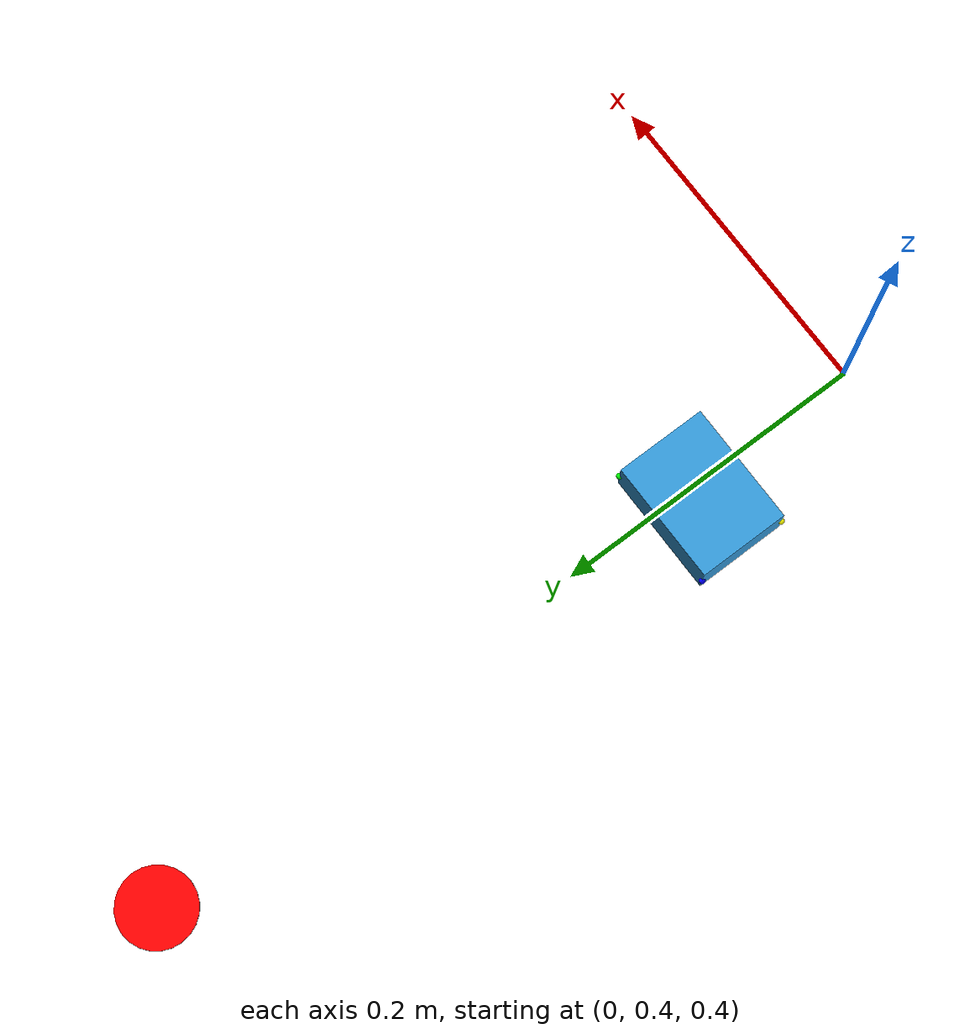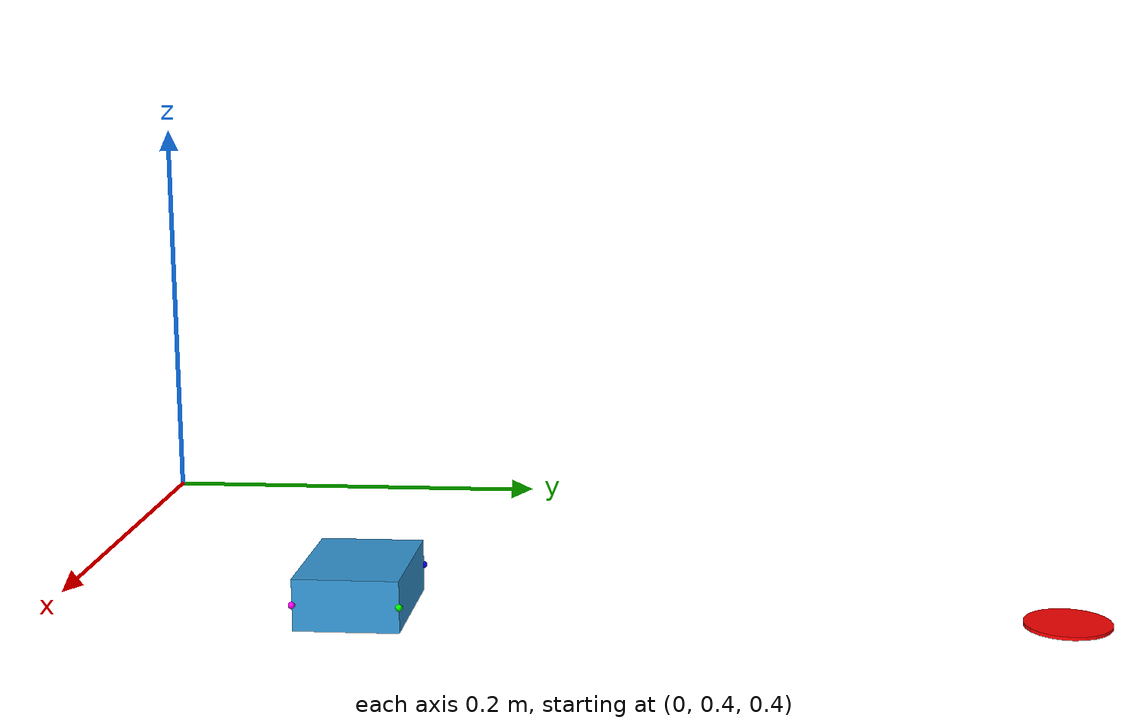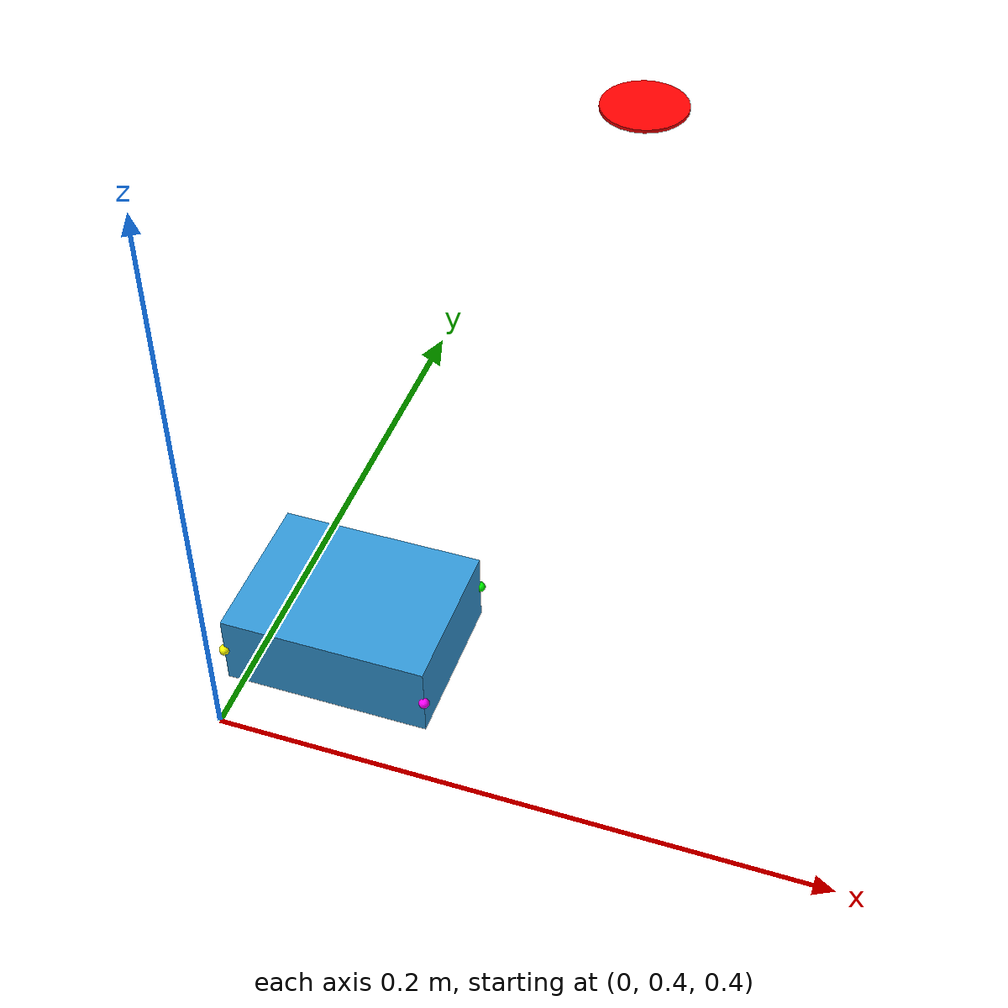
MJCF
<mujoco model="slider">

  <default>
    <default class="slider_contact">
      <geom condim="4" friction="0.35 0.005 0.001"
        solref="0.02 1" solimp="0.9 0.95 0.001 0.5 2"/>
    </default>
  </default>

  <asset>
    <material name="slider_mat" rgba="0.2 0.6 0.85 1"
      specular="0.3" shininess="0.2"/>
  </asset>

  <worldbody>
    <!-- Goal marker: base (0, 0.8) = world (0, 0.9), on the work-surface top (z=0.327) -->
    <site name="goal_mark" pos="0 0.9 0.328" type="cylinder" size="0.025 0.001"
      rgba="1 0 0 1"/>

    <!-- Slider: base-frame start (0, 0.4); z = work-surface top 0.327 + half-height 0.015 = 0.342. -->
    <body name="slider" pos="0 0.5 0.342">
      <freejoint name="slider_joint"/>
      <inertial mass="1.05" pos="0 0 0"
        diaginertia="0.000394 0.000525 0.000164"/>
      <geom name="slider_geom" type="box" size="0.04 0.03 0.015"
        class="slider_contact" material="slider_mat"/>
      <site name="slider_center" pos="0 0 0" size="0.003" rgba="1 0 0 1"/>
      <site name="slider_corner_pp" pos="0.04 0.03 0" size="0.002" rgba="0 1 0 1"/>
      <site name="slider_corner_np" pos="-0.04 0.03 0" size="0.002" rgba="0 0 1 1"/>
      <site name="slider_corner_nn" pos="-0.04 -0.03 0" size="0.002" rgba="1 1 0 1"/>
      <site name="slider_corner_pn" pos="0.04 -0.03 0" size="0.002" rgba="1 0 1 1"/>
    </body>
  </worldbody>
</mujoco>
